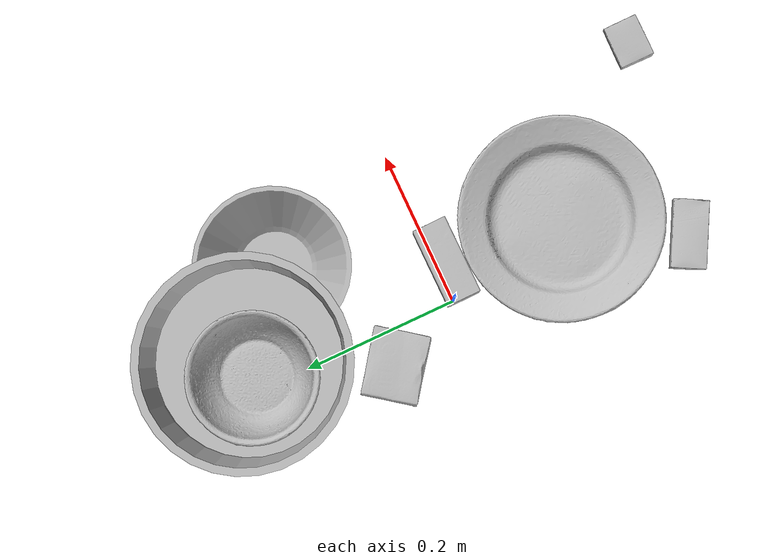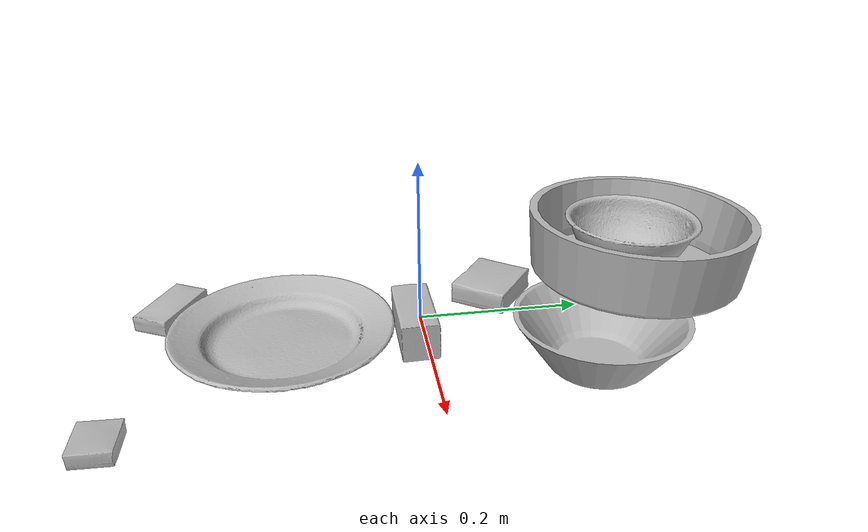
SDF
<sdf version="1.4">
  <world name="default">
    <light name="light1" type="point">
      <pose>0 0 1 0 0 0</pose>
      <diffuse>3 3 3 1</diffuse>
      <specular>3 3 3 1</specular>
    </light>
    <light name="light2" type="point">
      <pose>0 0.5 2 0 0 0</pose>
      <diffuse>1 1 1 1</diffuse>
      <specular>1 1 1 1</specular>
    </light>
    <light name="light3" type="point">
      <pose>0 0.5 2 0 0 0</pose>
      <diffuse>3 3 3 1</diffuse>
      <specular>3 3 3 1</specular>
    </light>
    <scene>
      <ambient>0.7 0.7 0.7</ambient>
    </scene>
    <model name="box1">
      <link name="link_box1">
        <collision name="default">
          <geometry>
            <mesh>
              <uri>model://gelatin_box/collision_meshes/collision.obj</uri>
              <scale>1.0 1.0 1.0</scale>
            </mesh>
          </geometry>
          <surface>
            <friction>
              <ode>
                <mu>0.5</mu>
                <mu2>0.5</mu2>
              </ode>
            </friction>
          <contact>
        <ode>
            <max_vel>0</max_vel>
            <min_depth>0.0001</min_depth>
            <kp>1e8</kp>
        </ode>
    </contact></surface>
        </collision>
        <visual name="default">
          <geometry>
            <mesh>
              <uri>model://gelatin_box/visual_meshes/visual.dae</uri>
              <scale>1.0 1.0 1.0</scale>
            </mesh>
          </geometry>
        </visual>
        <inertial>
          <mass>0.24885821342468262</mass>
          <pose>0.0004319618456065655 0.00011156872642459348 -0.0003640321083366871 -0.0010503721884538221 -0.004755817759936981 0.016440553883063976</pose>
          <inertia>
            <ixx>0.0001756736</ixx>
            <iyy>0.00012548274</iyy>
            <izz>0.00026741438</izz>
            <ixy>0</ixy>
            <ixz>0</ixz>
            <iyz>0</iyz>
          </inertia>
        </inertial>
      </link>
      <pose>-0.04325198382139206 0.09896304458379745 0.015168312937021255 0.005597466005212586 -0.00730459594844264 -2.220337641079149</pose>
    </model>
    <model name="box11">
      <link name="link_box11">
        <collision name="default">
          <geometry>
            <mesh>
              <uri>model://pudding_box/collision_meshes/collision.obj</uri>
              <scale>0.5 0.5 0.5</scale>
            </mesh>
          </geometry>
          <surface>
            <friction>
              <ode>
                <mu>0.5</mu>
                <mu2>0.5</mu2>
              </ode>
            </friction>
          <contact>
        <ode>
            <max_vel>0</max_vel>
            <min_depth>0.0001</min_depth>
            <kp>1e8</kp>
        </ode>
    </contact></surface>
        </collision>
        <visual name="default">
          <geometry>
            <mesh>
              <uri>model://pudding_box/visual_meshes/visual.dae</uri>
              <scale>0.5 0.5 0.5</scale>
            </mesh>
          </geometry>
        </visual>
        <inertial>
          <mass>0.031047143042087555</mass>
          <pose>0.00024474109522998333 0.00040339428232982755 -0.0002594413817860186 0.005213102716306955 -0.006603798272123425 0.020079828883677098</pose>
          <inertia>
            <ixx>8.774299e-06</ixx>
            <iyy>5.903411e-06</iyy>
            <izz>1.2957546e-05</izz>
            <ixy>0</ixy>
            <ixz>0</ixz>
            <iyz>0</iyz>
          </inertia>
        </inertial>
      </link>
      <pose>0.2023649960756302 -0.33919474482536316 0.009862900711596012 0.022348609619934866 -0.011391662405043012 -1.572867092666085</pose>
    </model>
    <model name="box2">
      <link name="link_box2">
        <collision name="default">
          <geometry>
            <mesh>
              <uri>model://rubiks_cube/collision_meshes/collision.obj</uri>
              <scale>1.0 1.0 1.0</scale>
            </mesh>
          </geometry>
          <surface>
            <friction>
              <ode>
                <mu>0.5</mu>
                <mu2>0.5</mu2>
              </ode>
            </friction>
          <contact>
        <ode>
            <max_vel>0</max_vel>
            <min_depth>0.0001</min_depth>
            <kp>1e8</kp>
        </ode>
    </contact></surface>
        </collision>
        <visual name="default">
          <geometry>
            <mesh>
              <uri>model://rubiks_cube/visual_meshes/visual.dae</uri>
              <scale>1.0 1.0 1.0</scale>
            </mesh>
          </geometry>
        </visual>
        <inertial>
          <mass>0.2106715589761734</mass>
          <pose>2.6721041649580002e-05 5.2569666877388954e-05 -7.264316536748083e-06 -0.05467273700930805 -0.09814071961497198 -0.03445608496414611</pose>
          <inertia>
            <ixx>0.0001164102</ixx>
            <iyy>0.000115867326</iyy>
            <izz>0.00011737483</izz>
            <ixy>0</ixy>
            <ixz>0</ixz>
            <iyz>0</iyz>
          </inertia>
        </inertial>
      </link>
      <pose>-0.010639375075697899 0.2906044125556946 0.02868014946579933 9.427639618517622e-05 4.2909607943377306e-05 -2.8182407653704793</pose>
    </model>
    <model name="box21">
      <link name="link_box21">
        <collision name="default">
          <geometry>
            <mesh>
              <uri>model://wood_block/collision_meshes/collision.obj</uri>
              <scale>0.5 0.5 0.5</scale>
            </mesh>
          </geometry>
          <surface>
            <friction>
              <ode>
                <mu>0.5</mu>
                <mu2>0.5</mu2>
              </ode>
            </friction>
          <contact>
        <ode>
            <max_vel>0</max_vel>
            <min_depth>0.0001</min_depth>
            <kp>1e8</kp>
        </ode>
    </contact></surface>
        </collision>
        <visual name="default">
          <geometry>
            <mesh>
              <uri>model://wood_block/visual_meshes/visual.dae</uri>
              <scale>0.5 0.5 0.5</scale>
            </mesh>
          </geometry>
        </visual>
        <inertial>
          <mass>0.146076962351799</mass>
          <pose>-2.9066577553749084e-06 -0.000285404734313488 0.00013204291462898254 -0.052208177866913126 -0.0051926955252411455 -0.006861378006552687</pose>
          <inertia>
            <ixx>4.8868267e-05</ixx>
            <iyy>0.00015437487</iyy>
            <izz>0.00015379742</izz>
            <ixy>0</ixy>
            <ixz>0</ixz>
            <iyz>0</iyz>
          </inertia>
        </inertial>
      </link>
      <pose>0.046738047152757645 -0.012624246999621391 0.02262926660478115 -0.005208572537411976 0.005718710620836656 -3.130667253950419</pose>
    </model>
    <model name="box3">
      <link name="link_box3">
        <collision name="default">
          <geometry>
            <mesh>
              <uri>model://cracker_box/collision_meshes/collision.obj</uri>
              <scale>0.25 0.25 0.25</scale>
            </mesh>
          </geometry>
          <surface>
            <friction>
              <ode>
                <mu>0.5</mu>
                <mu2>0.5</mu2>
              </ode>
            </friction>
          <contact>
        <ode>
            <max_vel>0</max_vel>
            <min_depth>0.0001</min_depth>
            <kp>1e8</kp>
        </ode>
    </contact></surface>
        </collision>
        <visual name="default">
          <geometry>
            <mesh>
              <uri>model://cracker_box/visual_meshes/visual.dae</uri>
              <scale>0.25 0.25 0.25</scale>
            </mesh>
          </geometry>
        </visual>
        <inertial>
          <mass>0.0398951955139637</mass>
          <pose>0.0002366032567806542 6.358561950037256e-05 -0.0004257383698131889 -0.00031620768741309833 -0.011106487737478729 0.0025467957005107203</pose>
          <inertia>
            <ixx>6.342223e-06</ixx>
            <iyy>1.0472255e-05</iyy>
            <izz>1.494487e-05</izz>
            <ixy>0</ixy>
            <ixz>0</ixz>
            <iyz>0</iyz>
          </inertia>
        </inertial>
      </link>
      <pose>0.07229741662740707 0.27108755707740784 0.009120448492467403 -0.011787911646056743 -0.007367205641486446 -2.742159696361332</pose>
    </model>
    <model name="box31">
      <link name="link_box31">
        <collision name="default">
          <geometry>
            <mesh>
              <uri>model://sugar_box/collision_meshes/collision.obj</uri>
              <scale>0.5 0.5 0.5</scale>
            </mesh>
          </geometry>
          <surface>
            <friction>
              <ode>
                <mu>0.5</mu>
                <mu2>0.5</mu2>
              </ode>
            </friction>
          <contact>
        <ode>
            <max_vel>0</max_vel>
            <min_depth>0.0001</min_depth>
            <kp>1e8</kp>
        </ode>
    </contact></surface>
        </collision>
        <visual name="default">
          <geometry>
            <mesh>
              <uri>model://sugar_box/visual_meshes/visual.dae</uri>
              <scale>0.5 0.5 0.5</scale>
            </mesh>
          </geometry>
        </visual>
        <inertial>
          <mass>0.051384337246418</mass>
          <pose>0.0005171863595023751 1.924554817378521e-05 -0.00018182402709499002 -0.00040462574757428057 0.0010506634050244472 0.0026153787892360275</pose>
          <inertia>
            <ixx>1.070332e-05</ixx>
            <iyy>3.4595334e-05</iyy>
            <izz>4.1414743e-05</izz>
            <ixy>0</ixy>
            <ixz>0</ixz>
            <iyz>0</iyz>
          </inertia>
        </inertial>
      </link>
      <pose>-0.0498216487467289 -0.3038504123687744 0.01139929797500372 0.0007759576957630485 -0.023432854831470062 2.6408603846823104</pose>
    </model>
    <model name="plate1">
      <link name="link_plate1">
        <collision name="default">
          <geometry>
            <mesh>
              <uri>model://plate/collision_meshes/collision.obj</uri>
              <scale>1.0 1.0 1.0</scale>
            </mesh>
          </geometry>
          <surface>
            <friction>
              <ode>
                <mu>0.5</mu>
                <mu2>0.5</mu2>
              </ode>
            </friction>
          <contact>
        <ode>
            <max_vel>0</max_vel>
            <min_depth>0.0001</min_depth>
            <kp>1e8</kp>
        </ode>
    </contact></surface>
        </collision>
        <visual name="default">
          <geometry>
            <mesh>
              <uri>model://plate/visual_meshes/visual.dae</uri>
              <scale>1.0 1.0 1.0</scale>
            </mesh>
          </geometry>
        </visual>
        <inertial>
          <mass>0.18845537304878235</mass>
          <pose>-0.0006044640904292464 0.00027825849247165024 -0.0010561994276940823 0.0022188128524267426 -0.0032254640251278745 0.45260123674794867</pose>
          <inertia>
            <ixx>0.0008815983</ixx>
            <iyy>0.00087316614</iyy>
            <izz>0.001724274</izz>
            <ixy>0</ixy>
            <ixz>0</ixz>
            <iyz>0</iyz>
          </inertia>
        </inertial>
      </link>
      <pose>0.03505316004157066 -0.1661253273487091 0.01373299676924944 1.9685162835288697e-09 1.2589756976682299e-08 -0.6334325914307889</pose>
    </model>
    <model name="bowl1">
      <link name="link_bowl1">
        <collision name="default">
          <geometry>
            <mesh>
              <uri>model://bowl_a/collision_meshes/collision.obj</uri>
              <scale>1.0 1.0 1.0</scale>
            </mesh>
          </geometry>
          <surface>
            <friction>
              <ode>
                <mu>0.5</mu>
                <mu2>0.5</mu2>
              </ode>
            </friction>
          <contact>
        <ode>
            <max_vel>0</max_vel>
            <min_depth>0.0001</min_depth>
            <kp>1e8</kp>
        </ode>
    </contact></surface>
        </collision>
        <visual name="default">
          <geometry>
            <mesh>
              <uri>model://bowl_a/visual_meshes/visual.dae</uri>
              <scale>1.0 1.0 1.0</scale>
            </mesh>
          </geometry>
        </visual>
        <inertial>
          <mass>0.46761196851730347</mass>
          <pose>0.0002786737459246069 4.731199442176148e-05 -0.0013765295734629035 -0.0009805421566516771 -0.0010938164969012795 -0.19123134440759623</pose>
          <inertia>
            <ixx>0.0013313128</ixx>
            <iyy>0.0013394863</iyy>
            <izz>0.0023677913</izz>
            <ixy>0</ixy>
            <ixz>0</ixz>
            <iyz>0</iyz>
          </inertia>
        </inertial>
      </link>
      <pose>0.13167507946491241 0.18383879959583282 0.030408747494220734 0.00011728865234149294 0.00045096439136767626 2.3346671635105047</pose>
    </model>
    <model name="plate2">
      <link name="link_plate2">
        <collision name="default">
          <geometry>
            <mesh>
              <uri>model://pan_tefal/collision_meshes/collision.obj</uri>
              <scale>1.0 1.0 1.0</scale>
            </mesh>
          </geometry>
          <surface>
            <friction>
              <ode>
                <mu>0.5</mu>
                <mu2>0.5</mu2>
              </ode>
            </friction>
          <contact>
        <ode>
            <max_vel>0</max_vel>
            <min_depth>0.0001</min_depth>
            <kp>1e8</kp>
        </ode>
    </contact></surface>
        </collision>
        <visual name="default">
          <geometry>
            <mesh>
              <uri>model://pan_tefal/visual_meshes/visual.dae</uri>
              <scale>1.0 1.0 1.0</scale>
            </mesh>
          </geometry>
        </visual>
        <inertial>
          <mass>0.7360396385192871</mass>
          <pose>-0.00018002057913690805 3.2791922421893105e-05 -0.00851493515074253 0.0008190284364517867 -0.0003301440136962699 -0.3318532577359739</pose>
          <inertia>
            <ixx>0.0050808466</ixx>
            <iyy>0.005113603</iyy>
            <izz>0.00935286</izz>
            <ixy>0</ixy>
            <ixz>0</ixz>
            <iyz>0</iyz>
          </inertia>
        </inertial>
      </link>
      <pose>0.03462092578411102 0.2586790919303894 0.09823227673768997 -0.023729492130135876 0.025261902650117126 1.1833751564448785</pose>
    </model>
    <model name="bowl2">
      <link name="link_bowl2">
        <collision name="default">
          <geometry>
            <mesh>
              <uri>model://bowl/collision_meshes/collision.obj</uri>
              <scale>1.0 1.0 1.0</scale>
            </mesh>
          </geometry>
          <surface>
            <friction>
              <ode>
                <mu>0.5</mu>
                <mu2>0.5</mu2>
              </ode>
            </friction>
          <contact>
        <ode>
            <max_vel>0</max_vel>
            <min_depth>0.0001</min_depth>
            <kp>1e8</kp>
        </ode>
    </contact></surface>
        </collision>
        <visual name="default">
          <geometry>
            <mesh>
              <uri>model://bowl/visual_meshes/visual.dae</uri>
              <scale>1.0 1.0 1.0</scale>
            </mesh>
          </geometry>
        </visual>
        <inertial>
          <mass>0.11974068731069565</mass>
          <pose>0.00020445311383809894 -0.0010302052833139896 -0.0008042640401981771 -0.015764214972767723 0.014546668027170537 0.7140316235505751</pose>
          <inertia>
            <ixx>0.00027505384</ixx>
            <iyy>0.000268908</iyy>
            <izz>0.00046273507</izz>
            <ixy>0</ixy>
            <ixz>0</ixz>
            <iyz>0</iyz>
          </inertia>
        </inertial>
      </link>
      <pose>0.014862468466162682 0.25701674818992615 0.09548259526491165 0.034560765831148636 0.008543495916253502 -2.9567780130960215</pose>
    </model>
  <physics type="ode">
      <max_contacts>50</max_contacts>
      <ode>
        <solver>
          <type>quick</type>
          <iters>75</iters>
        </solver>
        <constraints>
          <contact_max_correcting_vel>0</contact_max_correcting_vel>
          <contact_surface_layer>0</contact_surface_layer>
        </constraints>
      </ode>
    </physics></world>
</sdf>
